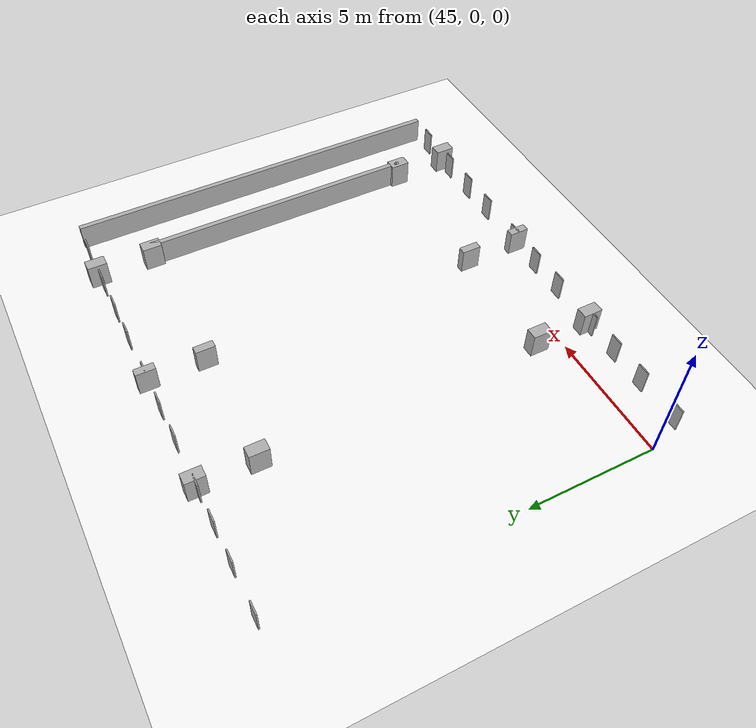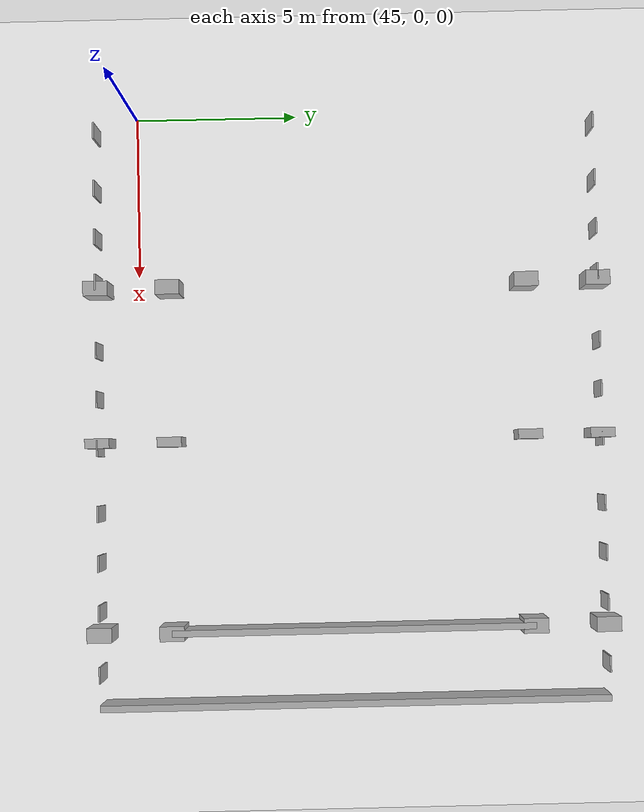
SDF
<sdf version="1.7">
 <world name="simple_corridor">
  <model name="ground_plane">
   <static>true</static>
   <link name="link">
    <collision name="collision">
     <geometry><plane><normal>0 0 1</normal><size>500 500</size></plane></geometry>
    </collision>
    <visual name="visual">
     <geometry><plane><normal>0 0 1</normal><size>500 500</size></plane></geometry>
     <material><ambient>1 1 1 1</ambient><diffuse>1 1 1 1</diffuse></material>
    </visual>
   </link>
  </model>
  <model name="wall_start_under">
   <static>true</static>
   <pose>61 6.5 0 0 0 0</pose>
   <link name="link">
    <collision name="collision"><geometry><box><size>0.2 11 2.0</size></box></geometry></collision>
    <visual name="visual">
     <geometry><box><size>0.2 11 2.0</size></box></geometry>
     <material><diffuse>0.7 0.7 0.7 1</diffuse></material>
    </visual>
   </link>
  </model>
  <model name="column_large_left_11">
   <static>true</static>
   <pose>50.45 12 0 0 0 0</pose>
   <link name="link">
    <collision name="collision"><geometry><box><size>0.45 0.75 2.0</size></box></geometry></collision>
    <visual name="visual">
     <geometry><box><size>0.45 0.75 2.0</size></box></geometry>
     <material><diffuse>0.7 0.7 0.7 1</diffuse></material>
    </visual>
   </link>
  </model>
  <model name="column_small_left_12">
   <static>true</static>
   <pose>55.2 12 0 0 0 0</pose>
   <link name="link">
    <collision name="collision"><geometry><box><size>0.3 0.75 2.0</size></box></geometry></collision>
    <visual name="visual">
     <geometry><box><size>0.3 0.75 2.0</size></box></geometry>
     <material><diffuse>0.7 0.7 0.7 1</diffuse></material>
    </visual>
   </link>
  </model>
  <model name="column_large_left_13">
   <static>true</static>
   <pose>61 12 0 0 0 0</pose>
   <link name="link">
    <collision name="collision"><geometry><box><size>0.45 0.75 2.0</size></box></geometry></collision>
    <visual name="visual">
     <geometry><box><size>0.45 0.75 2.0</size></box></geometry>
     <material><diffuse>0.7 0.7 0.7 1</diffuse></material>
    </visual>
   </link>
  </model>
  <model name="column_large_right_11">
   <static>true</static>
   <pose>50.45 1 0 0 0 0</pose>
   <link name="link">
    <collision name="collision"><geometry><box><size>0.45 0.75 2.0</size></box></geometry></collision>
    <visual name="visual">
     <geometry><box><size>0.45 0.75 2.0</size></box></geometry>
     <material><diffuse>0.7 0.7 0.7 1</diffuse></material>
    </visual>
   </link>
  </model>
  <model name="column_small_right_12">
   <static>true</static>
   <pose>55.2 1 0 0 0 0</pose>
   <link name="link">
    <collision name="collision"><geometry><box><size>0.3 0.75 2.0</size></box></geometry></collision>
    <visual name="visual">
     <geometry><box><size>0.3 0.75 2.0</size></box></geometry>
     <material><diffuse>0.7 0.7 0.7 1</diffuse></material>
    </visual>
   </link>
  </model>
  <model name="column_large_right_13">
   <static>true</static>
   <pose>61 1 0 0 0 0</pose>
   <link name="link">
    <collision name="collision"><geometry><box><size>0.45 0.75 2.0</size></box></geometry></collision>
    <visual name="visual">
     <geometry><box><size>0.45 0.75 2.0</size></box></geometry>
     <material><diffuse>0.7 0.7 0.7 1</diffuse></material>
    </visual>
   </link>
  </model>
  <model name="ban_large_left_11">
   <static>true</static>
   <pose>50.45 14.2 0 0 0 0</pose>
   <link name="link">
    <collision name="collision"><geometry><box><size>0.45 0.75 2.0</size></box></geometry></collision>
    <visual name="visual">
     <geometry><box><size>0.45 0.75 2.0</size></box></geometry>
     <material><diffuse>0.7 0.7 0.7 1</diffuse></material>
    </visual>
   </link>
  </model>
  <model name="ban_small_left_12">
   <static>true</static>
   <pose>55.2 14.2 0 0 0 0</pose>
   <link name="link">
    <collision name="collision"><geometry><box><size>0.3 0.75 2.0</size></box></geometry></collision>
    <visual name="visual">
     <geometry><box><size>0.3 0.75 2.0</size></box></geometry>
     <material><diffuse>0.7 0.7 0.7 1</diffuse></material>
    </visual>
   </link>
  </model>
  <model name="ban_large_left_13">
   <static>true</static>
   <pose>61 14.2 0 0 0 0</pose>
   <link name="link">
    <collision name="collision"><geometry><box><size>0.45 0.75 2.0</size></box></geometry></collision>
    <visual name="visual">
     <geometry><box><size>0.45 0.75 2.0</size></box></geometry>
     <material><diffuse>0.7 0.7 0.7 1</diffuse></material>
    </visual>
   </link>
  </model>
  <model name="ban_large_right_11">
   <static>true</static>
   <pose>50.45 -1.2 0 0 0 0</pose>
   <link name="link">
    <collision name="collision"><geometry><box><size>0.45 0.75 2.0</size></box></geometry></collision>
    <visual name="visual">
     <geometry><box><size>0.45 0.75 2.0</size></box></geometry>
     <material><diffuse>0.7 0.7 0.7 1</diffuse></material>
    </visual>
   </link>
  </model>
  <model name="ban_small_right_12">
   <static>true</static>
   <pose>55.2 -1.2 0 0 0 0</pose>
   <link name="link">
    <collision name="collision"><geometry><box><size>0.3 0.75 2.0</size></box></geometry></collision>
    <visual name="visual">
     <geometry><box><size>0.3 0.75 2.0</size></box></geometry>
     <material><diffuse>0.7 0.7 0.7 1</diffuse></material>
    </visual>
   </link>
  </model>
  <model name="ban_large_right_13">
   <static>true</static>
   <pose>61 -1.2 0 0 0 0</pose>
   <link name="link">
    <collision name="collision"><geometry><box><size>0.45 0.75 2.0</size></box></geometry></collision>
    <visual name="visual">
     <geometry><box><size>0.45 0.75 2.0</size></box></geometry>
     <material><diffuse>0.7 0.7 0.7 1</diffuse></material>
    </visual>
   </link>
  </model>
  <model name="bar_left_27">
   <static>true</static>
   <pose>45.55 14.2 0 0 0 0</pose>
   <link name="link">
    <collision name="collision"><geometry><box><size>0.5 0.05 2.0</size></box></geometry></collision>
    <visual name="visual">
     <geometry><box><size>0.5 0.05 2.0</size></box></geometry>
     <material><diffuse>0.7 0.7 0.7 1</diffuse></material>
    </visual>
   </link>
  </model>
  <model name="bar_left_28">
   <static>true</static>
   <pose>47.35 14.2 0 0 0 0</pose>
   <link name="link">
    <collision name="collision"><geometry><box><size>0.5 0.05 2.0</size></box></geometry></collision>
    <visual name="visual">
     <geometry><box><size>0.5 0.05 2.0</size></box></geometry>
     <material><diffuse>0.7 0.7 0.7 1</diffuse></material>
    </visual>
   </link>
  </model>
  <model name="bar_left_29">
   <static>true</static>
   <pose>48.85 14.2 0 0 0 0</pose>
   <link name="link">
    <collision name="collision"><geometry><box><size>0.5 0.05 2.0</size></box></geometry></collision>
    <visual name="visual">
     <geometry><box><size>0.5 0.05 2.0</size></box></geometry>
     <material><diffuse>0.7 0.7 0.7 1</diffuse></material>
    </visual>
   </link>
  </model>
  <model name="bar_left_30">
   <static>true</static>
   <pose>50.25 14.2 0 0 0 0</pose>
   <link name="link">
    <collision name="collision"><geometry><box><size>0.5 0.05 2.0</size></box></geometry></collision>
    <visual name="visual">
     <geometry><box><size>0.5 0.05 2.0</size></box></geometry>
     <material><diffuse>0.7 0.7 0.7 1</diffuse></material>
    </visual>
   </link>
  </model>
  <model name="bar_left_31">
   <static>true</static>
   <pose>52.35 14.2 0 0 0 0</pose>
   <link name="link">
    <collision name="collision"><geometry><box><size>0.5 0.05 2.0</size></box></geometry></collision>
    <visual name="visual">
     <geometry><box><size>0.5 0.05 2.0</size></box></geometry>
     <material><diffuse>0.7 0.7 0.7 1</diffuse></material>
    </visual>
   </link>
  </model>
  <model name="bar_left_32">
   <static>true</static>
   <pose>53.85 14.2 0 0 0 0</pose>
   <link name="link">
    <collision name="collision"><geometry><box><size>0.5 0.05 2.0</size></box></geometry></collision>
    <visual name="visual">
     <geometry><box><size>0.5 0.05 2.0</size></box></geometry>
     <material><diffuse>0.7 0.7 0.7 1</diffuse></material>
    </visual>
   </link>
  </model>
  <model name="bar_left_33">
   <static>true</static>
   <pose>55.35 14.2 0 0 0 0</pose>
   <link name="link">
    <collision name="collision"><geometry><box><size>0.5 0.05 2.0</size></box></geometry></collision>
    <visual name="visual">
     <geometry><box><size>0.5 0.05 2.0</size></box></geometry>
     <material><diffuse>0.7 0.7 0.7 1</diffuse></material>
    </visual>
   </link>
  </model>
  <model name="bar_left_34">
   <static>true</static>
   <pose>57.35 14.2 0 0 0 0</pose>
   <link name="link">
    <collision name="collision"><geometry><box><size>0.5 0.05 2.0</size></box></geometry></collision>
    <visual name="visual">
     <geometry><box><size>0.5 0.05 2.0</size></box></geometry>
     <material><diffuse>0.7 0.7 0.7 1</diffuse></material>
    </visual>
   </link>
  </model>
  <model name="bar_left_35">
   <static>true</static>
   <pose>58.85 14.2 0 0 0 0</pose>
   <link name="link">
    <collision name="collision"><geometry><box><size>0.5 0.05 2.0</size></box></geometry></collision>
    <visual name="visual">
     <geometry><box><size>0.5 0.05 2.0</size></box></geometry>
     <material><diffuse>0.7 0.7 0.7 1</diffuse></material>
    </visual>
   </link>
  </model>
  <model name="bar_left_36">
   <static>true</static>
   <pose>60.35 14.2 0 0 0 0</pose>
   <link name="link">
    <collision name="collision"><geometry><box><size>0.5 0.05 2.0</size></box></geometry></collision>
    <visual name="visual">
     <geometry><box><size>0.5 0.05 2.0</size></box></geometry>
     <material><diffuse>0.7 0.7 0.7 1</diffuse></material>
    </visual>
   </link>
  </model>
  <model name="bar_left_37">
   <static>true</static>
   <pose>62.2 14.2 0 0 0 0</pose>
   <link name="link">
    <collision name="collision"><geometry><box><size>0.5 0.05 2.0</size></box></geometry></collision>
    <visual name="visual">
     <geometry><box><size>0.5 0.05 2.0</size></box></geometry>
     <material><diffuse>0.7 0.7 0.7 1</diffuse></material>
    </visual>
   </link>
  </model>
  <model name="bar_right_27">
   <static>true</static>
   <pose>45.55 -1.2 0 0 0 0</pose>
   <link name="link">
    <collision name="collision"><geometry><box><size>0.5 0.05 2.0</size></box></geometry></collision>
    <visual name="visual">
     <geometry><box><size>0.5 0.05 2.0</size></box></geometry>
     <material><diffuse>0.7 0.7 0.7 1</diffuse></material>
    </visual>
   </link>
  </model>
  <model name="bar_right_28">
   <static>true</static>
   <pose>47.35 -1.2 0 0 0 0</pose>
   <link name="link">
    <collision name="collision"><geometry><box><size>0.5 0.05 2.0</size></box></geometry></collision>
    <visual name="visual">
     <geometry><box><size>0.5 0.05 2.0</size></box></geometry>
     <material><diffuse>0.7 0.7 0.7 1</diffuse></material>
    </visual>
   </link>
  </model>
  <model name="bar_right_29">
   <static>true</static>
   <pose>48.85 -1.2 0 0 0 0</pose>
   <link name="link">
    <collision name="collision"><geometry><box><size>0.5 0.05 2.0</size></box></geometry></collision>
    <visual name="visual">
     <geometry><box><size>0.5 0.05 2.0</size></box></geometry>
     <material><diffuse>0.7 0.7 0.7 1</diffuse></material>
    </visual>
   </link>
  </model>
  <model name="bar_right_30">
   <static>true</static>
   <pose>50.25 -1.2 0 0 0 0</pose>
   <link name="link">
    <collision name="collision"><geometry><box><size>0.5 0.05 2.0</size></box></geometry></collision>
    <visual name="visual">
     <geometry><box><size>0.5 0.05 2.0</size></box></geometry>
     <material><diffuse>0.7 0.7 0.7 1</diffuse></material>
    </visual>
   </link>
  </model>
  <model name="bar_right_31">
   <static>true</static>
   <pose>52.35 -1.2 0 0 0 0</pose>
   <link name="link">
    <collision name="collision"><geometry><box><size>0.5 0.05 2.0</size></box></geometry></collision>
    <visual name="visual">
     <geometry><box><size>0.5 0.05 2.0</size></box></geometry>
     <material><diffuse>0.7 0.7 0.7 1</diffuse></material>
    </visual>
   </link>
  </model>
  <model name="bar_right_32">
   <static>true</static>
   <pose>53.85 -1.2 0 0 0 0</pose>
   <link name="link">
    <collision name="collision"><geometry><box><size>0.5 0.05 2.0</size></box></geometry></collision>
    <visual name="visual">
     <geometry><box><size>0.5 0.05 2.0</size></box></geometry>
     <material><diffuse>0.7 0.7 0.7 1</diffuse></material>
    </visual>
   </link>
  </model>
  <model name="bar_right_33">
   <static>true</static>
   <pose>55.35 -1.2 0 0 0 0</pose>
   <link name="link">
    <collision name="collision"><geometry><box><size>0.5 0.05 2.0</size></box></geometry></collision>
    <visual name="visual">
     <geometry><box><size>0.5 0.05 2.0</size></box></geometry>
     <material><diffuse>0.7 0.7 0.7 1</diffuse></material>
    </visual>
   </link>
  </model>
  <model name="bar_right_34">
   <static>true</static>
   <pose>57.35 -1.2 0 0 0 0</pose>
   <link name="link">
    <collision name="collision"><geometry><box><size>0.5 0.05 2.0</size></box></geometry></collision>
    <visual name="visual">
     <geometry><box><size>0.5 0.05 2.0</size></box></geometry>
     <material><diffuse>0.7 0.7 0.7 1</diffuse></material>
    </visual>
   </link>
  </model>
  <model name="bar_right_35">
   <static>true</static>
   <pose>58.85 -1.2 0 0 0 0</pose>
   <link name="link">
    <collision name="collision"><geometry><box><size>0.5 0.05 2.0</size></box></geometry></collision>
    <visual name="visual">
     <geometry><box><size>0.5 0.05 2.0</size></box></geometry>
     <material><diffuse>0.7 0.7 0.7 1</diffuse></material>
    </visual>
   </link>
  </model>
  <model name="bar_right_36">
   <static>true</static>
   <pose>60.35 -1.2 0 0 0 0</pose>
   <link name="link">
    <collision name="collision"><geometry><box><size>0.5 0.05 2.0</size></box></geometry></collision>
    <visual name="visual">
     <geometry><box><size>0.5 0.05 2.0</size></box></geometry>
     <material><diffuse>0.7 0.7 0.7 1</diffuse></material>
    </visual>
   </link>
  </model>
  <model name="bar_right_37">
   <static>true</static>
   <pose>62.2 -1.2 0 0 0 0</pose>
   <link name="link">
    <collision name="collision"><geometry><box><size>0.5 0.05 2.0</size></box></geometry></collision>
    <visual name="visual">
     <geometry><box><size>0.5 0.05 2.0</size></box></geometry>
     <material><diffuse>0.7 0.7 0.7 1</diffuse></material>
    </visual>
   </link>
  </model>
  <model name="wall_start_on_opposite">
   <static>true</static>
   <pose>63.2 6.5 0 0 0 0</pose>
   <link name="link">
    <collision name="collision"><geometry><box><size>0.2 15.4 2.0</size></box></geometry></collision>
    <visual name="visual">
     <geometry><box><size>0.2 15.4 2.0</size></box></geometry>
     <material><diffuse>0.7 0.7 0.7 1</diffuse></material>
    </visual>
   </link>
  </model>
 </world>
</sdf>
